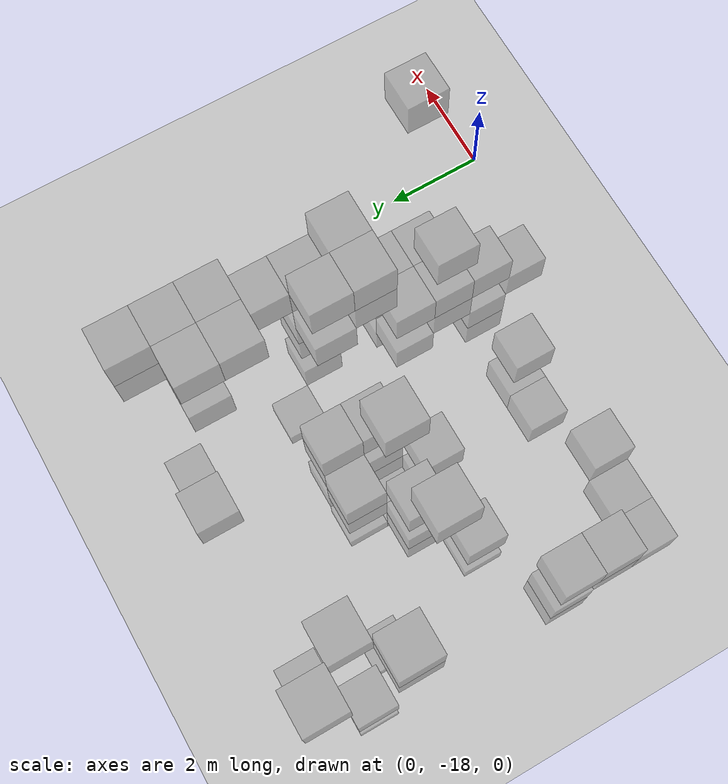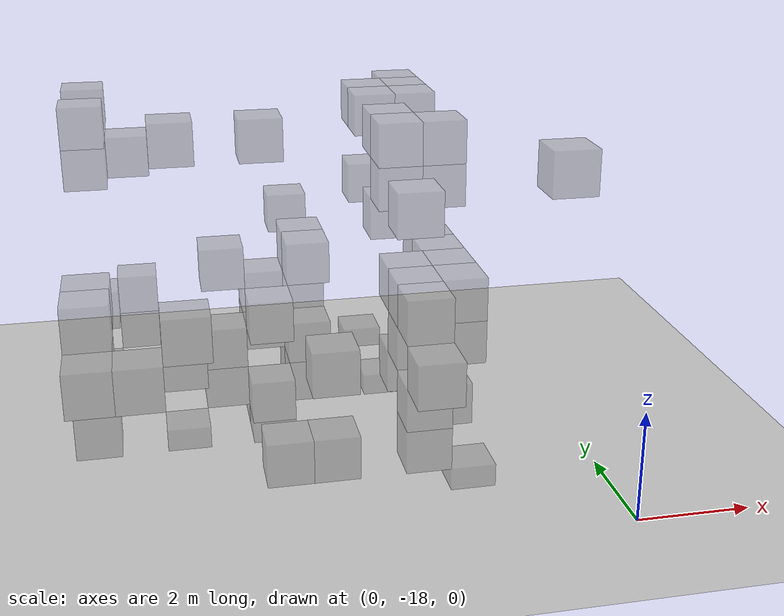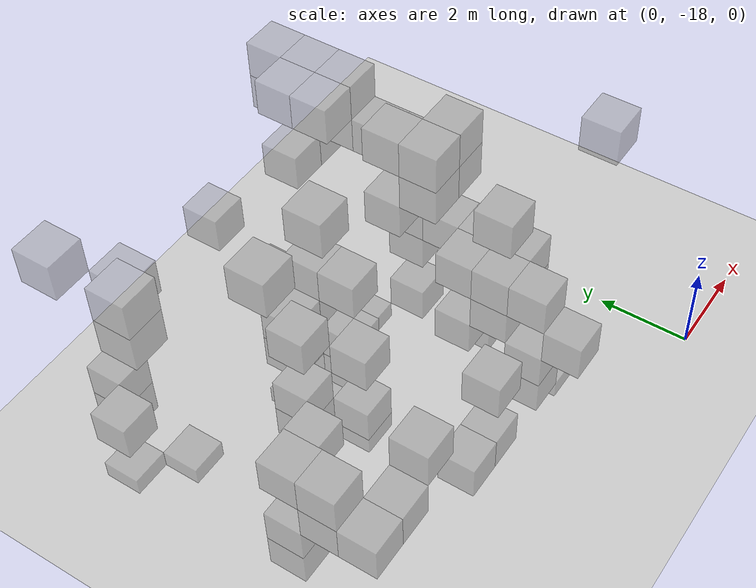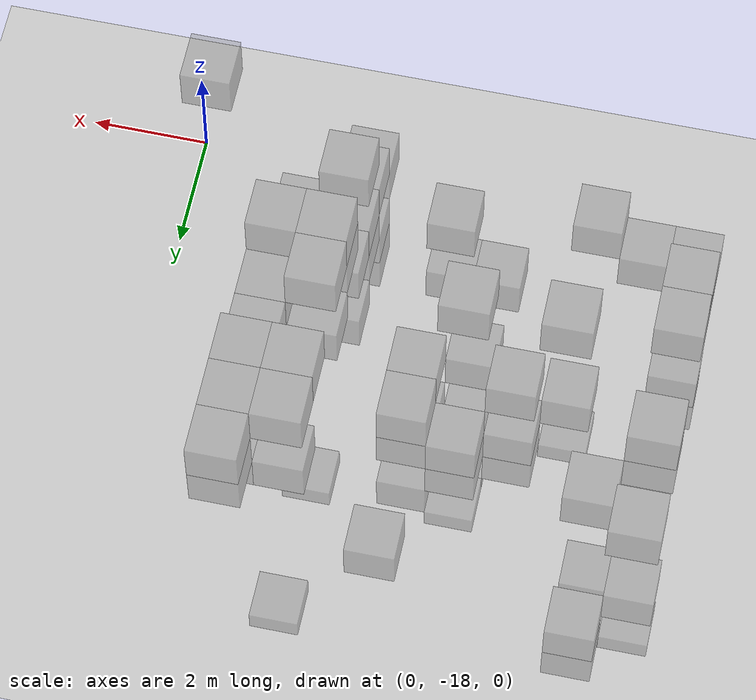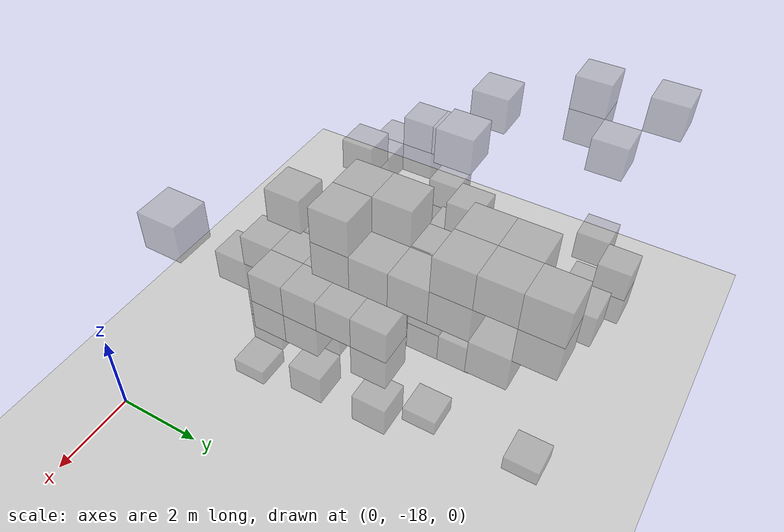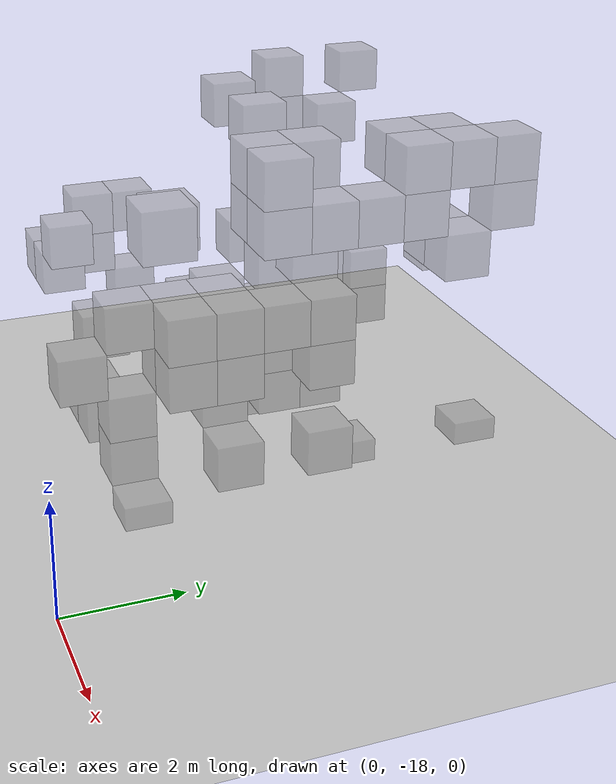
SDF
<sdf version="1.6">
 <world name="cramped_environment">
  <include><uri>model://sun</uri></include>
  <include><uri>model://ground_plane</uri></include>
  <model name="obs_2">
   <static>true</static>
   <pose>-8.80 -14.40 1.60 0 0 0</pose>
   <link name="link">
    <collision name="collision"><geometry><box><size>0.80 0.80 0.80</size></box></geometry></collision>
    <visual name="visual">
     <transparency>0.5</transparency>
     <geometry><box><size>0.80 0.80 0.80</size></box></geometry>
     <material>
      <script><name>Gazebo/Grey</name><uri>file://media/materials/scripts/gazebo.material</uri></script>
     </material>
    </visual>
   </link>
  </model>
  <model name="obs_3">
   <static>true</static>
   <pose>-2.40 -12.80 0.80 0 0 0</pose>
   <link name="link">
    <collision name="collision"><geometry><box><size>0.80 0.80 0.80</size></box></geometry></collision>
    <visual name="visual">
     <transparency>0.5</transparency>
     <geometry><box><size>0.80 0.80 0.80</size></box></geometry>
     <material>
      <script><name>Gazebo/Grey</name><uri>file://media/materials/scripts/gazebo.material</uri></script>
     </material>
    </visual>
   </link>
  </model>
  <model name="obs_9">
   <static>true</static>
   <pose>-2.40 -9.60 5.60 0 0 0</pose>
   <link name="link">
    <collision name="collision"><geometry><box><size>0.80 0.80 0.80</size></box></geometry></collision>
    <visual name="visual">
     <transparency>0.5</transparency>
     <geometry><box><size>0.80 0.80 0.80</size></box></geometry>
     <material>
      <script><name>Gazebo/Grey</name><uri>file://media/materials/scripts/gazebo.material</uri></script>
     </material>
    </visual>
   </link>
  </model>
  <model name="obs_12">
   <static>true</static>
   <pose>-2.40 -15.20 3.20 0 0 0</pose>
   <link name="link">
    <collision name="collision"><geometry><box><size>0.80 0.80 0.80</size></box></geometry></collision>
    <visual name="visual">
     <transparency>0.5</transparency>
     <geometry><box><size>0.80 0.80 0.80</size></box></geometry>
     <material>
      <script><name>Gazebo/Grey</name><uri>file://media/materials/scripts/gazebo.material</uri></script>
     </material>
    </visual>
   </link>
  </model>
  <model name="obs_15">
   <static>true</static>
   <pose>-4.80 -12.00 0.80 0 0 0</pose>
   <link name="link">
    <collision name="collision"><geometry><box><size>0.80 0.80 0.80</size></box></geometry></collision>
    <visual name="visual">
     <transparency>0.5</transparency>
     <geometry><box><size>0.80 0.80 0.80</size></box></geometry>
     <material>
      <script><name>Gazebo/Grey</name><uri>file://media/materials/scripts/gazebo.material</uri></script>
     </material>
    </visual>
   </link>
  </model>
  <model name="obs_23">
   <static>true</static>
   <pose>-5.60 -13.60 0.80 0 0 0</pose>
   <link name="link">
    <collision name="collision"><geometry><box><size>0.80 0.80 0.80</size></box></geometry></collision>
    <visual name="visual">
     <transparency>0.5</transparency>
     <geometry><box><size>0.80 0.80 0.80</size></box></geometry>
     <material>
      <script><name>Gazebo/Grey</name><uri>file://media/materials/scripts/gazebo.material</uri></script>
     </material>
    </visual>
   </link>
  </model>
  <model name="obs_32">
   <static>true</static>
   <pose>-3.20 -14.40 1.60 0 0 0</pose>
   <link name="link">
    <collision name="collision"><geometry><box><size>0.80 0.80 0.80</size></box></geometry></collision>
    <visual name="visual">
     <transparency>0.5</transparency>
     <geometry><box><size>0.80 0.80 0.80</size></box></geometry>
     <material>
      <script><name>Gazebo/Grey</name><uri>file://media/materials/scripts/gazebo.material</uri></script>
     </material>
    </visual>
   </link>
  </model>
  <model name="obs_43">
   <static>true</static>
   <pose>-8.80 -9.60 5.60 0 0 0</pose>
   <link name="link">
    <collision name="collision"><geometry><box><size>0.80 0.80 0.80</size></box></geometry></collision>
    <visual name="visual">
     <transparency>0.5</transparency>
     <geometry><box><size>0.80 0.80 0.80</size></box></geometry>
     <material>
      <script><name>Gazebo/Grey</name><uri>file://media/materials/scripts/gazebo.material</uri></script>
     </material>
    </visual>
   </link>
  </model>
  <model name="obs_44">
   <static>true</static>
   <pose>-8.80 -16.00 2.40 0 0 0</pose>
   <link name="link">
    <collision name="collision"><geometry><box><size>0.80 0.80 0.80</size></box></geometry></collision>
    <visual name="visual">
     <transparency>0.5</transparency>
     <geometry><box><size>0.80 0.80 0.80</size></box></geometry>
     <material>
      <script><name>Gazebo/Grey</name><uri>file://media/materials/scripts/gazebo.material</uri></script>
     </material>
    </visual>
   </link>
  </model>
  <model name="obs_46">
   <static>true</static>
   <pose>-2.40 -13.60 3.20 0 0 0</pose>
   <link name="link">
    <collision name="collision"><geometry><box><size>0.80 0.80 0.80</size></box></geometry></collision>
    <visual name="visual">
     <transparency>0.5</transparency>
     <geometry><box><size>0.80 0.80 0.80</size></box></geometry>
     <material>
      <script><name>Gazebo/Grey</name><uri>file://media/materials/scripts/gazebo.material</uri></script>
     </material>
    </visual>
   </link>
  </model>
  <model name="obs_50">
   <static>true</static>
   <pose>-8.80 -15.20 3.20 0 0 0</pose>
   <link name="link">
    <collision name="collision"><geometry><box><size>0.80 0.80 0.80</size></box></geometry></collision>
    <visual name="visual">
     <transparency>0.5</transparency>
     <geometry><box><size>0.80 0.80 0.80</size></box></geometry>
     <material>
      <script><name>Gazebo/Grey</name><uri>file://media/materials/scripts/gazebo.material</uri></script>
     </material>
    </visual>
   </link>
  </model>
  <model name="obs_53">
   <static>true</static>
   <pose>-8.00 -11.20 0.00 0 0 0</pose>
   <link name="link">
    <collision name="collision"><geometry><box><size>0.80 0.80 0.80</size></box></geometry></collision>
    <visual name="visual">
     <transparency>0.5</transparency>
     <geometry><box><size>0.80 0.80 0.80</size></box></geometry>
     <material>
      <script><name>Gazebo/Grey</name><uri>file://media/materials/scripts/gazebo.material</uri></script>
     </material>
    </visual>
   </link>
  </model>
  <model name="obs_55">
   <static>true</static>
   <pose>-2.40 -12.80 3.20 0 0 0</pose>
   <link name="link">
    <collision name="collision"><geometry><box><size>0.80 0.80 0.80</size></box></geometry></collision>
    <visual name="visual">
     <transparency>0.5</transparency>
     <geometry><box><size>0.80 0.80 0.80</size></box></geometry>
     <material>
      <script><name>Gazebo/Grey</name><uri>file://media/materials/scripts/gazebo.material</uri></script>
     </material>
    </visual>
   </link>
  </model>
  <model name="obs_56">
   <static>true</static>
   <pose>-7.20 -12.80 5.60 0 0 0</pose>
   <link name="link">
    <collision name="collision"><geometry><box><size>0.80 0.80 0.80</size></box></geometry></collision>
    <visual name="visual">
     <transparency>0.5</transparency>
     <geometry><box><size>0.80 0.80 0.80</size></box></geometry>
     <material>
      <script><name>Gazebo/Grey</name><uri>file://media/materials/scripts/gazebo.material</uri></script>
     </material>
    </visual>
   </link>
  </model>
  <model name="obs_63">
   <static>true</static>
   <pose>-5.60 -12.00 0.00 0 0 0</pose>
   <link name="link">
    <collision name="collision"><geometry><box><size>0.80 0.80 0.80</size></box></geometry></collision>
    <visual name="visual">
     <transparency>0.5</transparency>
     <geometry><box><size>0.80 0.80 0.80</size></box></geometry>
     <material>
      <script><name>Gazebo/Grey</name><uri>file://media/materials/scripts/gazebo.material</uri></script>
     </material>
    </visual>
   </link>
  </model>
  <model name="obs_71">
   <static>true</static>
   <pose>-4.80 -12.00 3.20 0 0 0</pose>
   <link name="link">
    <collision name="collision"><geometry><box><size>0.80 0.80 0.80</size></box></geometry></collision>
    <visual name="visual">
     <transparency>0.5</transparency>
     <geometry><box><size>0.80 0.80 0.80</size></box></geometry>
     <material>
      <script><name>Gazebo/Grey</name><uri>file://media/materials/scripts/gazebo.material</uri></script>
     </material>
    </visual>
   </link>
  </model>
  <model name="obs_80">
   <static>true</static>
   <pose>-3.20 -15.20 3.20 0 0 0</pose>
   <link name="link">
    <collision name="collision"><geometry><box><size>0.80 0.80 0.80</size></box></geometry></collision>
    <visual name="visual">
     <transparency>0.5</transparency>
     <geometry><box><size>0.80 0.80 0.80</size></box></geometry>
     <material>
      <script><name>Gazebo/Grey</name><uri>file://media/materials/scripts/gazebo.material</uri></script>
     </material>
    </visual>
   </link>
  </model>
  <model name="obs_86">
   <static>true</static>
   <pose>-2.40 -10.40 4.00 0 0 0</pose>
   <link name="link">
    <collision name="collision"><geometry><box><size>0.80 0.80 0.80</size></box></geometry></collision>
    <visual name="visual">
     <transparency>0.5</transparency>
     <geometry><box><size>0.80 0.80 0.80</size></box></geometry>
     <material>
      <script><name>Gazebo/Grey</name><uri>file://media/materials/scripts/gazebo.material</uri></script>
     </material>
    </visual>
   </link>
  </model>
  <model name="obs_91">
   <static>true</static>
   <pose>-2.40 -13.60 5.60 0 0 0</pose>
   <link name="link">
    <collision name="collision"><geometry><box><size>0.80 0.80 0.80</size></box></geometry></collision>
    <visual name="visual">
     <transparency>0.5</transparency>
     <geometry><box><size>0.80 0.80 0.80</size></box></geometry>
     <material>
      <script><name>Gazebo/Grey</name><uri>file://media/materials/scripts/gazebo.material</uri></script>
     </material>
    </visual>
   </link>
  </model>
  <model name="obs_96">
   <static>true</static>
   <pose>-7.20 -16.00 3.20 0 0 0</pose>
   <link name="link">
    <collision name="collision"><geometry><box><size>0.80 0.80 0.80</size></box></geometry></collision>
    <visual name="visual">
     <transparency>0.5</transparency>
     <geometry><box><size>0.80 0.80 0.80</size></box></geometry>
     <material>
      <script><name>Gazebo/Grey</name><uri>file://media/materials/scripts/gazebo.material</uri></script>
     </material>
    </visual>
   </link>
  </model>
  <model name="obs_100">
   <static>true</static>
   <pose>-4.80 -16.00 0.80 0 0 0</pose>
   <link name="link">
    <collision name="collision"><geometry><box><size>0.80 0.80 0.80</size></box></geometry></collision>
    <visual name="visual">
     <transparency>0.5</transparency>
     <geometry><box><size>0.80 0.80 0.80</size></box></geometry>
     <material>
      <script><name>Gazebo/Grey</name><uri>file://media/materials/scripts/gazebo.material</uri></script>
     </material>
    </visual>
   </link>
  </model>
  <model name="obs_108">
   <static>true</static>
   <pose>-5.60 -12.00 2.40 0 0 0</pose>
   <link name="link">
    <collision name="collision"><geometry><box><size>0.80 0.80 0.80</size></box></geometry></collision>
    <visual name="visual">
     <transparency>0.5</transparency>
     <geometry><box><size>0.80 0.80 0.80</size></box></geometry>
     <material>
      <script><name>Gazebo/Grey</name><uri>file://media/materials/scripts/gazebo.material</uri></script>
     </material>
    </visual>
   </link>
  </model>
  <model name="obs_110">
   <static>true</static>
   <pose>-5.60 -12.80 5.60 0 0 0</pose>
   <link name="link">
    <collision name="collision"><geometry><box><size>0.80 0.80 0.80</size></box></geometry></collision>
    <visual name="visual">
     <transparency>0.5</transparency>
     <geometry><box><size>0.80 0.80 0.80</size></box></geometry>
     <material>
      <script><name>Gazebo/Grey</name><uri>file://media/materials/scripts/gazebo.material</uri></script>
     </material>
    </visual>
   </link>
  </model>
  <model name="obs_112">
   <static>true</static>
   <pose>-3.20 -12.80 4.00 0 0 0</pose>
   <link name="link">
    <collision name="collision"><geometry><box><size>0.80 0.80 0.80</size></box></geometry></collision>
    <visual name="visual">
     <transparency>0.5</transparency>
     <geometry><box><size>0.80 0.80 0.80</size></box></geometry>
     <material>
      <script><name>Gazebo/Grey</name><uri>file://media/materials/scripts/gazebo.material</uri></script>
     </material>
    </visual>
   </link>
  </model>
  <model name="obs_119">
   <static>true</static>
   <pose>-8.80 -10.40 0.00 0 0 0</pose>
   <link name="link">
    <collision name="collision"><geometry><box><size>0.80 0.80 0.80</size></box></geometry></collision>
    <visual name="visual">
     <transparency>0.5</transparency>
     <geometry><box><size>0.80 0.80 0.80</size></box></geometry>
     <material>
      <script><name>Gazebo/Grey</name><uri>file://media/materials/scripts/gazebo.material</uri></script>
     </material>
    </visual>
   </link>
  </model>
  <model name="obs_129">
   <static>true</static>
   <pose>-2.40 -14.40 0.80 0 0 0</pose>
   <link name="link">
    <collision name="collision"><geometry><box><size>0.80 0.80 0.80</size></box></geometry></collision>
    <visual name="visual">
     <transparency>0.5</transparency>
     <geometry><box><size>0.80 0.80 0.80</size></box></geometry>
     <material>
      <script><name>Gazebo/Grey</name><uri>file://media/materials/scripts/gazebo.material</uri></script>
     </material>
    </visual>
   </link>
  </model>
  <model name="obs_130">
   <static>true</static>
   <pose>-7.20 -13.60 0.00 0 0 0</pose>
   <link name="link">
    <collision name="collision"><geometry><box><size>0.80 0.80 0.80</size></box></geometry></collision>
    <visual name="visual">
     <transparency>0.5</transparency>
     <geometry><box><size>0.80 0.80 0.80</size></box></geometry>
     <material>
      <script><name>Gazebo/Grey</name><uri>file://media/materials/scripts/gazebo.material</uri></script>
     </material>
    </visual>
   </link>
  </model>
  <model name="obs_131">
   <static>true</static>
   <pose>-2.40 -12.00 4.80 0 0 0</pose>
   <link name="link">
    <collision name="collision"><geometry><box><size>0.80 0.80 0.80</size></box></geometry></collision>
    <visual name="visual">
     <transparency>0.5</transparency>
     <geometry><box><size>0.80 0.80 0.80</size></box></geometry>
     <material>
      <script><name>Gazebo/Grey</name><uri>file://media/materials/scripts/gazebo.material</uri></script>
     </material>
    </visual>
   </link>
  </model>
  <model name="obs_135">
   <static>true</static>
   <pose>-2.40 -11.20 5.60 0 0 0</pose>
   <link name="link">
    <collision name="collision"><geometry><box><size>0.80 0.80 0.80</size></box></geometry></collision>
    <visual name="visual">
     <transparency>0.5</transparency>
     <geometry><box><size>0.80 0.80 0.80</size></box></geometry>
     <material>
      <script><name>Gazebo/Grey</name><uri>file://media/materials/scripts/gazebo.material</uri></script>
     </material>
    </visual>
   </link>
  </model>
  <model name="obs_140">
   <static>true</static>
   <pose>-8.00 -9.60 1.60 0 0 0</pose>
   <link name="link">
    <collision name="collision"><geometry><box><size>0.80 0.80 0.80</size></box></geometry></collision>
    <visual name="visual">
     <transparency>0.5</transparency>
     <geometry><box><size>0.80 0.80 0.80</size></box></geometry>
     <material>
      <script><name>Gazebo/Grey</name><uri>file://media/materials/scripts/gazebo.material</uri></script>
     </material>
    </visual>
   </link>
  </model>
  <model name="obs_142">
   <static>true</static>
   <pose>-8.00 -10.40 4.80 0 0 0</pose>
   <link name="link">
    <collision name="collision"><geometry><box><size>0.80 0.80 0.80</size></box></geometry></collision>
    <visual name="visual">
     <transparency>0.5</transparency>
     <geometry><box><size>0.80 0.80 0.80</size></box></geometry>
     <material>
      <script><name>Gazebo/Grey</name><uri>file://media/materials/scripts/gazebo.material</uri></script>
     </material>
    </visual>
   </link>
  </model>
  <model name="obs_148">
   <static>true</static>
   <pose>-8.00 -16.00 2.40 0 0 0</pose>
   <link name="link">
    <collision name="collision"><geometry><box><size>0.80 0.80 0.80</size></box></geometry></collision>
    <visual name="visual">
     <transparency>0.5</transparency>
     <geometry><box><size>0.80 0.80 0.80</size></box></geometry>
     <material>
      <script><name>Gazebo/Grey</name><uri>file://media/materials/scripts/gazebo.material</uri></script>
     </material>
    </visual>
   </link>
  </model>
  <model name="obs_149">
   <static>true</static>
   <pose>-4.80 -12.80 1.60 0 0 0</pose>
   <link name="link">
    <collision name="collision"><geometry><box><size>0.80 0.80 0.80</size></box></geometry></collision>
    <visual name="visual">
     <transparency>0.5</transparency>
     <geometry><box><size>0.80 0.80 0.80</size></box></geometry>
     <material>
      <script><name>Gazebo/Grey</name><uri>file://media/materials/scripts/gazebo.material</uri></script>
     </material>
    </visual>
   </link>
  </model>
  <model name="obs_152">
   <static>true</static>
   <pose>-6.40 -12.80 1.60 0 0 0</pose>
   <link name="link">
    <collision name="collision"><geometry><box><size>0.80 0.80 0.80</size></box></geometry></collision>
    <visual name="visual">
     <transparency>0.5</transparency>
     <geometry><box><size>0.80 0.80 0.80</size></box></geometry>
     <material>
      <script><name>Gazebo/Grey</name><uri>file://media/materials/scripts/gazebo.material</uri></script>
     </material>
    </visual>
   </link>
  </model>
  <model name="obs_154">
   <static>true</static>
   <pose>-3.20 -10.40 4.00 0 0 0</pose>
   <link name="link">
    <collision name="collision"><geometry><box><size>0.80 0.80 0.80</size></box></geometry></collision>
    <visual name="visual">
     <transparency>0.5</transparency>
     <geometry><box><size>0.80 0.80 0.80</size></box></geometry>
     <material>
      <script><name>Gazebo/Grey</name><uri>file://media/materials/scripts/gazebo.material</uri></script>
     </material>
    </visual>
   </link>
  </model>
  <model name="obs_162">
   <static>true</static>
   <pose>-3.20 -16.00 1.60 0 0 0</pose>
   <link name="link">
    <collision name="collision"><geometry><box><size>0.80 0.80 0.80</size></box></geometry></collision>
    <visual name="visual">
     <transparency>0.5</transparency>
     <geometry><box><size>0.80 0.80 0.80</size></box></geometry>
     <material>
      <script><name>Gazebo/Grey</name><uri>file://media/materials/scripts/gazebo.material</uri></script>
     </material>
    </visual>
   </link>
  </model>
  <model name="obs_165">
   <static>true</static>
   <pose>-3.20 -13.60 5.60 0 0 0</pose>
   <link name="link">
    <collision name="collision"><geometry><box><size>0.80 0.80 0.80</size></box></geometry></collision>
    <visual name="visual">
     <transparency>0.5</transparency>
     <geometry><box><size>0.80 0.80 0.80</size></box></geometry>
     <material>
      <script><name>Gazebo/Grey</name><uri>file://media/materials/scripts/gazebo.material</uri></script>
     </material>
    </visual>
   </link>
  </model>
  <model name="obs_171">
   <static>true</static>
   <pose>-8.80 -14.40 0.80 0 0 0</pose>
   <link name="link">
    <collision name="collision"><geometry><box><size>0.80 0.80 0.80</size></box></geometry></collision>
    <visual name="visual">
     <transparency>0.5</transparency>
     <geometry><box><size>0.80 0.80 0.80</size></box></geometry>
     <material>
      <script><name>Gazebo/Grey</name><uri>file://media/materials/scripts/gazebo.material</uri></script>
     </material>
    </visual>
   </link>
  </model>
  <model name="obs_176">
   <static>true</static>
   <pose>-8.80 -11.20 5.60 0 0 0</pose>
   <link name="link">
    <collision name="collision"><geometry><box><size>0.80 0.80 0.80</size></box></geometry></collision>
    <visual name="visual">
     <transparency>0.5</transparency>
     <geometry><box><size>0.80 0.80 0.80</size></box></geometry>
     <material>
      <script><name>Gazebo/Grey</name><uri>file://media/materials/scripts/gazebo.material</uri></script>
     </material>
    </visual>
   </link>
  </model>
  <model name="obs_177">
   <static>true</static>
   <pose>-2.40 -9.60 4.80 0 0 0</pose>
   <link name="link">
    <collision name="collision"><geometry><box><size>0.80 0.80 0.80</size></box></geometry></collision>
    <visual name="visual">
     <transparency>0.5</transparency>
     <geometry><box><size>0.80 0.80 0.80</size></box></geometry>
     <material>
      <script><name>Gazebo/Grey</name><uri>file://media/materials/scripts/gazebo.material</uri></script>
     </material>
    </visual>
   </link>
  </model>
  <model name="obs_179">
   <static>true</static>
   <pose>-0.80 -16.00 5.60 0 0 0</pose>
   <link name="link">
    <collision name="collision"><geometry><box><size>0.80 0.80 0.80</size></box></geometry></collision>
    <visual name="visual">
     <transparency>0.5</transparency>
     <geometry><box><size>0.80 0.80 0.80</size></box></geometry>
     <material>
      <script><name>Gazebo/Grey</name><uri>file://media/materials/scripts/gazebo.material</uri></script>
     </material>
    </visual>
   </link>
  </model>
  <model name="obs_182">
   <static>true</static>
   <pose>-2.40 -15.20 2.40 0 0 0</pose>
   <link name="link">
    <collision name="collision"><geometry><box><size>0.80 0.80 0.80</size></box></geometry></collision>
    <visual name="visual">
     <transparency>0.5</transparency>
     <geometry><box><size>0.80 0.80 0.80</size></box></geometry>
     <material>
      <script><name>Gazebo/Grey</name><uri>file://media/materials/scripts/gazebo.material</uri></script>
     </material>
    </visual>
   </link>
  </model>
  <model name="obs_186">
   <static>true</static>
   <pose>-2.40 -14.40 3.20 0 0 0</pose>
   <link name="link">
    <collision name="collision"><geometry><box><size>0.80 0.80 0.80</size></box></geometry></collision>
    <visual name="visual">
     <transparency>0.5</transparency>
     <geometry><box><size>0.80 0.80 0.80</size></box></geometry>
     <material>
      <script><name>Gazebo/Grey</name><uri>file://media/materials/scripts/gazebo.material</uri></script>
     </material>
    </visual>
   </link>
  </model>
  <model name="obs_192">
   <static>true</static>
   <pose>-5.60 -13.60 0.00 0 0 0</pose>
   <link name="link">
    <collision name="collision"><geometry><box><size>0.80 0.80 0.80</size></box></geometry></collision>
    <visual name="visual">
     <transparency>0.5</transparency>
     <geometry><box><size>0.80 0.80 0.80</size></box></geometry>
     <material>
      <script><name>Gazebo/Grey</name><uri>file://media/materials/scripts/gazebo.material</uri></script>
     </material>
    </visual>
   </link>
  </model>
  <model name="obs_203">
   <static>true</static>
   <pose>-5.60 -12.80 0.00 0 0 0</pose>
   <link name="link">
    <collision name="collision"><geometry><box><size>0.80 0.80 0.80</size></box></geometry></collision>
    <visual name="visual">
     <transparency>0.5</transparency>
     <geometry><box><size>0.80 0.80 0.80</size></box></geometry>
     <material>
      <script><name>Gazebo/Grey</name><uri>file://media/materials/scripts/gazebo.material</uri></script>
     </material>
    </visual>
   </link>
  </model>
  <model name="obs_208">
   <static>true</static>
   <pose>-3.20 -11.20 5.60 0 0 0</pose>
   <link name="link">
    <collision name="collision"><geometry><box><size>0.80 0.80 0.80</size></box></geometry></collision>
    <visual name="visual">
     <transparency>0.5</transparency>
     <geometry><box><size>0.80 0.80 0.80</size></box></geometry>
     <material>
      <script><name>Gazebo/Grey</name><uri>file://media/materials/scripts/gazebo.material</uri></script>
     </material>
    </visual>
   </link>
  </model>
  <model name="obs_223">
   <static>true</static>
   <pose>-8.80 -15.20 2.40 0 0 0</pose>
   <link name="link">
    <collision name="collision"><geometry><box><size>0.80 0.80 0.80</size></box></geometry></collision>
    <visual name="visual">
     <transparency>0.5</transparency>
     <geometry><box><size>0.80 0.80 0.80</size></box></geometry>
     <material>
      <script><name>Gazebo/Grey</name><uri>file://media/materials/scripts/gazebo.material</uri></script>
     </material>
    </visual>
   </link>
  </model>
  <model name="obs_225">
   <static>true</static>
   <pose>-8.80 -14.40 3.20 0 0 0</pose>
   <link name="link">
    <collision name="collision"><geometry><box><size>0.80 0.80 0.80</size></box></geometry></collision>
    <visual name="visual">
     <transparency>0.5</transparency>
     <geometry><box><size>0.80 0.80 0.80</size></box></geometry>
     <material>
      <script><name>Gazebo/Grey</name><uri>file://media/materials/scripts/gazebo.material</uri></script>
     </material>
    </visual>
   </link>
  </model>
  <model name="obs_227">
   <static>true</static>
   <pose>-2.40 -12.80 2.40 0 0 0</pose>
   <link name="link">
    <collision name="collision"><geometry><box><size>0.80 0.80 0.80</size></box></geometry></collision>
    <visual name="visual">
     <transparency>0.5</transparency>
     <geometry><box><size>0.80 0.80 0.80</size></box></geometry>
     <material>
      <script><name>Gazebo/Grey</name><uri>file://media/materials/scripts/gazebo.material</uri></script>
     </material>
    </visual>
   </link>
  </model>
  <model name="obs_240">
   <static>true</static>
   <pose>-4.80 -12.00 2.40 0 0 0</pose>
   <link name="link">
    <collision name="collision"><geometry><box><size>0.80 0.80 0.80</size></box></geometry></collision>
    <visual name="visual">
     <transparency>0.5</transparency>
     <geometry><box><size>0.80 0.80 0.80</size></box></geometry>
     <material>
      <script><name>Gazebo/Grey</name><uri>file://media/materials/scripts/gazebo.material</uri></script>
     </material>
    </visual>
   </link>
  </model>
  <model name="obs_249">
   <static>true</static>
   <pose>-5.60 -13.60 2.40 0 0 0</pose>
   <link name="link">
    <collision name="collision"><geometry><box><size>0.80 0.80 0.80</size></box></geometry></collision>
    <visual name="visual">
     <transparency>0.5</transparency>
     <geometry><box><size>0.80 0.80 0.80</size></box></geometry>
     <material>
      <script><name>Gazebo/Grey</name><uri>file://media/materials/scripts/gazebo.material</uri></script>
     </material>
    </visual>
   </link>
  </model>
  <model name="obs_251">
   <static>true</static>
   <pose>-3.20 -15.20 2.40 0 0 0</pose>
   <link name="link">
    <collision name="collision"><geometry><box><size>0.80 0.80 0.80</size></box></geometry></collision>
    <visual name="visual">
     <transparency>0.5</transparency>
     <geometry><box><size>0.80 0.80 0.80</size></box></geometry>
     <material>
      <script><name>Gazebo/Grey</name><uri>file://media/materials/scripts/gazebo.material</uri></script>
     </material>
    </visual>
   </link>
  </model>
  <model name="obs_259">
   <static>true</static>
   <pose>-3.20 -14.40 3.20 0 0 0</pose>
   <link name="link">
    <collision name="collision"><geometry><box><size>0.80 0.80 0.80</size></box></geometry></collision>
    <visual name="visual">
     <transparency>0.5</transparency>
     <geometry><box><size>0.80 0.80 0.80</size></box></geometry>
     <material>
      <script><name>Gazebo/Grey</name><uri>file://media/materials/scripts/gazebo.material</uri></script>
     </material>
    </visual>
   </link>
  </model>
  <model name="obs_273">
   <static>true</static>
   <pose>-2.40 -13.60 4.80 0 0 0</pose>
   <link name="link">
    <collision name="collision"><geometry><box><size>0.80 0.80 0.80</size></box></geometry></collision>
    <visual name="visual">
     <transparency>0.5</transparency>
     <geometry><box><size>0.80 0.80 0.80</size></box></geometry>
     <material>
      <script><name>Gazebo/Grey</name><uri>file://media/materials/scripts/gazebo.material</uri></script>
     </material>
    </visual>
   </link>
  </model>
  <model name="obs_277">
   <static>true</static>
   <pose>-2.40 -16.00 0.00 0 0 0</pose>
   <link name="link">
    <collision name="collision"><geometry><box><size>0.80 0.80 0.80</size></box></geometry></collision>
    <visual name="visual">
     <transparency>0.5</transparency>
     <geometry><box><size>0.80 0.80 0.80</size></box></geometry>
     <material>
      <script><name>Gazebo/Grey</name><uri>file://media/materials/scripts/gazebo.material</uri></script>
     </material>
    </visual>
   </link>
  </model>
  <model name="obs_279">
   <static>true</static>
   <pose>-4.80 -9.60 3.20 0 0 0</pose>
   <link name="link">
    <collision name="collision"><geometry><box><size>0.80 0.80 0.80</size></box></geometry></collision>
    <visual name="visual">
     <transparency>0.5</transparency>
     <geometry><box><size>0.80 0.80 0.80</size></box></geometry>
     <material>
      <script><name>Gazebo/Grey</name><uri>file://media/materials/scripts/gazebo.material</uri></script>
     </material>
    </visual>
   </link>
  </model>
  <model name="obs_283">
   <static>true</static>
   <pose>-2.40 -12.80 4.80 0 0 0</pose>
   <link name="link">
    <collision name="collision"><geometry><box><size>0.80 0.80 0.80</size></box></geometry></collision>
    <visual name="visual">
     <transparency>0.5</transparency>
     <geometry><box><size>0.80 0.80 0.80</size></box></geometry>
     <material>
      <script><name>Gazebo/Grey</name><uri>file://media/materials/scripts/gazebo.material</uri></script>
     </material>
    </visual>
   </link>
  </model>
  <model name="obs_293">
   <static>true</static>
   <pose>-5.60 -12.00 1.60 0 0 0</pose>
   <link name="link">
    <collision name="collision"><geometry><box><size>0.80 0.80 0.80</size></box></geometry></collision>
    <visual name="visual">
     <transparency>0.5</transparency>
     <geometry><box><size>0.80 0.80 0.80</size></box></geometry>
     <material>
      <script><name>Gazebo/Grey</name><uri>file://media/materials/scripts/gazebo.material</uri></script>
     </material>
    </visual>
   </link>
  </model>
  <model name="obs_294">
   <static>true</static>
   <pose>-3.20 -12.00 0.00 0 0 0</pose>
   <link name="link">
    <collision name="collision"><geometry><box><size>0.80 0.80 0.80</size></box></geometry></collision>
    <visual name="visual">
     <transparency>0.5</transparency>
     <geometry><box><size>0.80 0.80 0.80</size></box></geometry>
     <material>
      <script><name>Gazebo/Grey</name><uri>file://media/materials/scripts/gazebo.material</uri></script>
     </material>
    </visual>
   </link>
  </model>
  <model name="obs_307">
   <static>true</static>
   <pose>-3.20 -15.20 4.80 0 0 0</pose>
   <link name="link">
    <collision name="collision"><geometry><box><size>0.80 0.80 0.80</size></box></geometry></collision>
    <visual name="visual">
     <transparency>0.5</transparency>
     <geometry><box><size>0.80 0.80 0.80</size></box></geometry>
     <material>
      <script><name>Gazebo/Grey</name><uri>file://media/materials/scripts/gazebo.material</uri></script>
     </material>
    </visual>
   </link>
  </model>
  <model name="obs_311">
   <static>true</static>
   <pose>-2.40 -11.20 4.80 0 0 0</pose>
   <link name="link">
    <collision name="collision"><geometry><box><size>0.80 0.80 0.80</size></box></geometry></collision>
    <visual name="visual">
     <transparency>0.5</transparency>
     <geometry><box><size>0.80 0.80 0.80</size></box></geometry>
     <material>
      <script><name>Gazebo/Grey</name><uri>file://media/materials/scripts/gazebo.material</uri></script>
     </material>
    </visual>
   </link>
  </model>
  <model name="obs_315">
   <static>true</static>
   <pose>-8.00 -9.60 0.80 0 0 0</pose>
   <link name="link">
    <collision name="collision"><geometry><box><size>0.80 0.80 0.80</size></box></geometry></collision>
    <visual name="visual">
     <transparency>0.5</transparency>
     <geometry><box><size>0.80 0.80 0.80</size></box></geometry>
     <material>
      <script><name>Gazebo/Grey</name><uri>file://media/materials/scripts/gazebo.material</uri></script>
     </material>
    </visual>
   </link>
  </model>
  <model name="obs_317">
   <static>true</static>
   <pose>-2.40 -10.40 5.60 0 0 0</pose>
   <link name="link">
    <collision name="collision"><geometry><box><size>0.80 0.80 0.80</size></box></geometry></collision>
    <visual name="visual">
     <transparency>0.5</transparency>
     <geometry><box><size>0.80 0.80 0.80</size></box></geometry>
     <material>
      <script><name>Gazebo/Grey</name><uri>file://media/materials/scripts/gazebo.material</uri></script>
     </material>
    </visual>
   </link>
  </model>
  <model name="obs_323">
   <static>true</static>
   <pose>-4.80 -12.80 0.80 0 0 0</pose>
   <link name="link">
    <collision name="collision"><geometry><box><size>0.80 0.80 0.80</size></box></geometry></collision>
    <visual name="visual">
     <transparency>0.5</transparency>
     <geometry><box><size>0.80 0.80 0.80</size></box></geometry>
     <material>
      <script><name>Gazebo/Grey</name><uri>file://media/materials/scripts/gazebo.material</uri></script>
     </material>
    </visual>
   </link>
  </model>
  <model name="obs_327">
   <static>true</static>
   <pose>-6.40 -12.80 0.80 0 0 0</pose>
   <link name="link">
    <collision name="collision"><geometry><box><size>0.80 0.80 0.80</size></box></geometry></collision>
    <visual name="visual">
     <transparency>0.5</transparency>
     <geometry><box><size>0.80 0.80 0.80</size></box></geometry>
     <material>
      <script><name>Gazebo/Grey</name><uri>file://media/materials/scripts/gazebo.material</uri></script>
     </material>
    </visual>
   </link>
  </model>
  <model name="obs_329">
   <static>true</static>
   <pose>-3.20 -9.60 0.00 0 0 0</pose>
   <link name="link">
    <collision name="collision"><geometry><box><size>0.80 0.80 0.80</size></box></geometry></collision>
    <visual name="visual">
     <transparency>0.5</transparency>
     <geometry><box><size>0.80 0.80 0.80</size></box></geometry>
     <material>
      <script><name>Gazebo/Grey</name><uri>file://media/materials/scripts/gazebo.material</uri></script>
     </material>
    </visual>
   </link>
  </model>
  <model name="obs_333">
   <static>true</static>
   <pose>-4.80 -16.00 2.40 0 0 0</pose>
   <link name="link">
    <collision name="collision"><geometry><box><size>0.80 0.80 0.80</size></box></geometry></collision>
    <visual name="visual">
     <transparency>0.5</transparency>
     <geometry><box><size>0.80 0.80 0.80</size></box></geometry>
     <material>
      <script><name>Gazebo/Grey</name><uri>file://media/materials/scripts/gazebo.material</uri></script>
     </material>
    </visual>
   </link>
  </model>
  <model name="obs_339">
   <static>true</static>
   <pose>-3.20 -16.00 0.80 0 0 0</pose>
   <link name="link">
    <collision name="collision"><geometry><box><size>0.80 0.80 0.80</size></box></geometry></collision>
    <visual name="visual">
     <transparency>0.5</transparency>
     <geometry><box><size>0.80 0.80 0.80</size></box></geometry>
     <material>
      <script><name>Gazebo/Grey</name><uri>file://media/materials/scripts/gazebo.material</uri></script>
     </material>
    </visual>
   </link>
  </model>
  <model name="obs_340">
   <static>true</static>
   <pose>-3.20 -13.60 4.80 0 0 0</pose>
   <link name="link">
    <collision name="collision"><geometry><box><size>0.80 0.80 0.80</size></box></geometry></collision>
    <visual name="visual">
     <transparency>0.5</transparency>
     <geometry><box><size>0.80 0.80 0.80</size></box></geometry>
     <material>
      <script><name>Gazebo/Grey</name><uri>file://media/materials/scripts/gazebo.material</uri></script>
     </material>
    </visual>
   </link>
  </model>
  <model name="obs_346">
   <static>true</static>
   <pose>-3.20 -12.80 5.60 0 0 0</pose>
   <link name="link">
    <collision name="collision"><geometry><box><size>0.80 0.80 0.80</size></box></geometry></collision>
    <visual name="visual">
     <transparency>0.5</transparency>
     <geometry><box><size>0.80 0.80 0.80</size></box></geometry>
     <material>
      <script><name>Gazebo/Grey</name><uri>file://media/materials/scripts/gazebo.material</uri></script>
     </material>
    </visual>
   </link>
  </model>
  <model name="obs_351">
   <static>true</static>
   <pose>-8.80 -10.40 1.60 0 0 0</pose>
   <link name="link">
    <collision name="collision"><geometry><box><size>0.80 0.80 0.80</size></box></geometry></collision>
    <visual name="visual">
     <transparency>0.5</transparency>
     <geometry><box><size>0.80 0.80 0.80</size></box></geometry>
     <material>
      <script><name>Gazebo/Grey</name><uri>file://media/materials/scripts/gazebo.material</uri></script>
     </material>
    </visual>
   </link>
  </model>
  <model name="obs_352">
   <static>true</static>
   <pose>-8.80 -11.20 4.80 0 0 0</pose>
   <link name="link">
    <collision name="collision"><geometry><box><size>0.80 0.80 0.80</size></box></geometry></collision>
    <visual name="visual">
     <transparency>0.5</transparency>
     <geometry><box><size>0.80 0.80 0.80</size></box></geometry>
     <material>
      <script><name>Gazebo/Grey</name><uri>file://media/materials/scripts/gazebo.material</uri></script>
     </material>
    </visual>
   </link>
  </model>
  <model name="obs_361">
   <static>true</static>
   <pose>-2.40 -14.40 2.40 0 0 0</pose>
   <link name="link">
    <collision name="collision"><geometry><box><size>0.80 0.80 0.80</size></box></geometry></collision>
    <visual name="visual">
     <transparency>0.5</transparency>
     <geometry><box><size>0.80 0.80 0.80</size></box></geometry>
     <material>
      <script><name>Gazebo/Grey</name><uri>file://media/materials/scripts/gazebo.material</uri></script>
     </material>
    </visual>
   </link>
  </model>
  <model name="obs_362">
   <static>true</static>
   <pose>-7.20 -13.60 1.60 0 0 0</pose>
   <link name="link">
    <collision name="collision"><geometry><box><size>0.80 0.80 0.80</size></box></geometry></collision>
    <visual name="visual">
     <transparency>0.5</transparency>
     <geometry><box><size>0.80 0.80 0.80</size></box></geometry>
     <material>
      <script><name>Gazebo/Grey</name><uri>file://media/materials/scripts/gazebo.material</uri></script>
     </material>
    </visual>
   </link>
  </model>
  <model name="obs_378">
   <static>true</static>
   <pose>-4.80 -12.80 3.20 0 0 0</pose>
   <link name="link">
    <collision name="collision"><geometry><box><size>0.80 0.80 0.80</size></box></geometry></collision>
    <visual name="visual">
     <transparency>0.5</transparency>
     <geometry><box><size>0.80 0.80 0.80</size></box></geometry>
     <material>
      <script><name>Gazebo/Grey</name><uri>file://media/materials/scripts/gazebo.material</uri></script>
     </material>
    </visual>
   </link>
  </model>
  <model name="obs_384">
   <static>true</static>
   <pose>-5.60 -16.00 0.80 0 0 0</pose>
   <link name="link">
    <collision name="collision"><geometry><box><size>0.80 0.80 0.80</size></box></geometry></collision>
    <visual name="visual">
     <transparency>0.5</transparency>
     <geometry><box><size>0.80 0.80 0.80</size></box></geometry>
     <material>
      <script><name>Gazebo/Grey</name><uri>file://media/materials/scripts/gazebo.material</uri></script>
     </material>
    </visual>
   </link>
  </model>
  <model name="obs_385">
   <static>true</static>
   <pose>-6.40 -12.80 3.20 0 0 0</pose>
   <link name="link">
    <collision name="collision"><geometry><box><size>0.80 0.80 0.80</size></box></geometry></collision>
    <visual name="visual">
     <transparency>0.5</transparency>
     <geometry><box><size>0.80 0.80 0.80</size></box></geometry>
     <material>
      <script><name>Gazebo/Grey</name><uri>file://media/materials/scripts/gazebo.material</uri></script>
     </material>
    </visual>
   </link>
  </model>
  <model name="obs_390">
   <static>true</static>
   <pose>-3.20 -10.40 5.60 0 0 0</pose>
   <link name="link">
    <collision name="collision"><geometry><box><size>0.80 0.80 0.80</size></box></geometry></collision>
    <visual name="visual">
     <transparency>0.5</transparency>
     <geometry><box><size>0.80 0.80 0.80</size></box></geometry>
     <material>
      <script><name>Gazebo/Grey</name><uri>file://media/materials/scripts/gazebo.material</uri></script>
     </material>
    </visual>
   </link>
  </model>
  <model name="obs_391">
   <static>true</static>
   <pose>-3.20 -16.80 2.40 0 0 0</pose>
   <link name="link">
    <collision name="collision"><geometry><box><size>0.80 0.80 0.80</size></box></geometry></collision>
    <visual name="visual">
     <transparency>0.5</transparency>
     <geometry><box><size>0.80 0.80 0.80</size></box></geometry>
     <material>
      <script><name>Gazebo/Grey</name><uri>file://media/materials/scripts/gazebo.material</uri></script>
     </material>
    </visual>
   </link>
  </model>
  <model name="obs_397">
   <static>true</static>
   <pose>-3.20 -16.00 3.20 0 0 0</pose>
   <link name="link">
    <collision name="collision"><geometry><box><size>0.80 0.80 0.80</size></box></geometry></collision>
    <visual name="visual">
     <transparency>0.5</transparency>
     <geometry><box><size>0.80 0.80 0.80</size></box></geometry>
     <material>
      <script><name>Gazebo/Grey</name><uri>file://media/materials/scripts/gazebo.material</uri></script>
     </material>
    </visual>
   </link>
  </model>
 </world>
</sdf>
